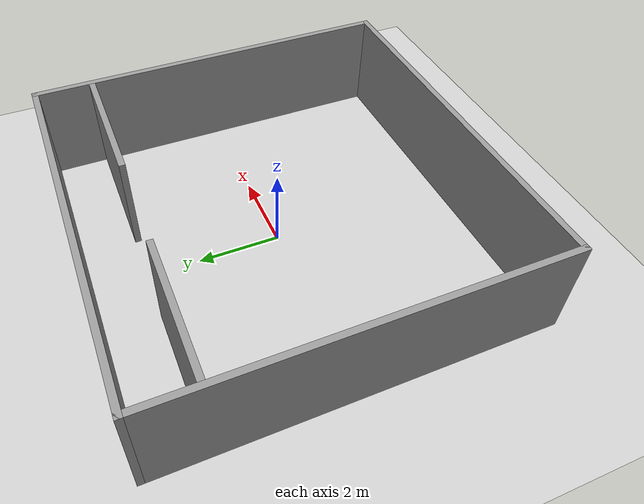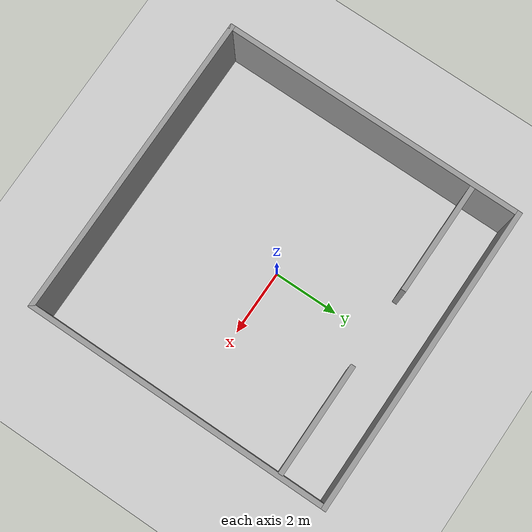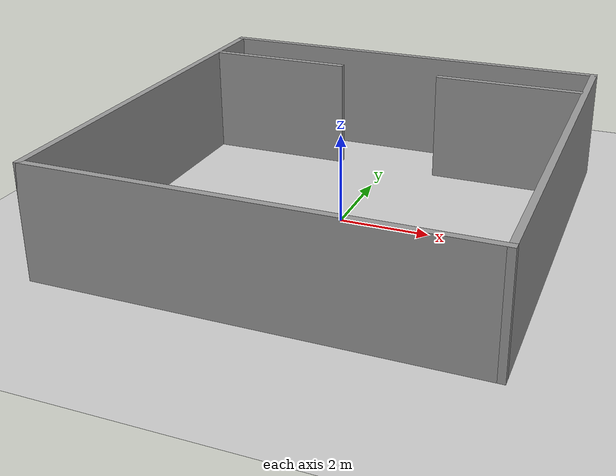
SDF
<sdf version="1.7">
 <world name="default">
  <model name="ground_plane">
   <static>1</static>
   <link name="link">
    <collision name="collision">
     <geometry><plane><normal>0 0 1</normal><size>100 100</size></plane></geometry>
     <surface>
      <contact><collide_bitmask>65535</collide_bitmask></contact>
      <friction><ode><mu>100</mu><mu2>50</mu2></ode></friction>
     </surface>
    </collision>
    <visual name="visual">
     <cast_shadows>0</cast_shadows>
     <geometry><plane><normal>0 0 1</normal><size>100 100</size></plane></geometry>
     <material>
      <script><uri>file://media/materials/scripts/gazebo.material</uri><name>Gazebo/Grey</name></script>
     </material>
    </visual>
   </link>
  </model>
  <model name="map_hourglass_u_outer">
   <link name="Wall_bottom">
    <collision name="Wall_bottom_Collision">
     <geometry><box><size>9.35 0.15 2.5</size></box></geometry>
     <pose>0 0 1.25 0 -0 0</pose>
    </collision>
    <visual name="Wall_bottom_Visual">
     <pose>0 0 1.25 0 -0 0</pose>
     <geometry><box><size>9.35 0.15 2.5</size></box></geometry>
     <material>
      <script><uri>file://media/materials/scripts/gazebo.material</uri><name>Gazebo/Grey</name></script>
      <ambient>1 1 1 1</ambient>
     </material>
    </visual>
    <pose>0.000000 -4.600000 0 0 -0 0.000000</pose>
   </link>
   <link name="Wall_top">
    <collision name="Wall_top_Collision">
     <geometry><box><size>9.35 0.15 2.5</size></box></geometry>
     <pose>0 0 1.25 0 -0 0</pose>
    </collision>
    <visual name="Wall_top_Visual">
     <pose>0 0 1.25 0 -0 0</pose>
     <geometry><box><size>9.35 0.15 2.5</size></box></geometry>
     <material>
      <script><uri>file://media/materials/scripts/gazebo.material</uri><name>Gazebo/Grey</name></script>
      <ambient>1 1 1 1</ambient>
     </material>
    </visual>
    <pose>0.000000 4.600000 0 0 -0 0.000000</pose>
   </link>
   <link name="Wall_left">
    <collision name="Wall_left_Collision">
     <geometry><box><size>9.35 0.15 2.5</size></box></geometry>
     <pose>0 0 1.25 0 -0 0</pose>
    </collision>
    <visual name="Wall_left_Visual">
     <pose>0 0 1.25 0 -0 0</pose>
     <geometry><box><size>9.35 0.15 2.5</size></box></geometry>
     <material>
      <script><uri>file://media/materials/scripts/gazebo.material</uri><name>Gazebo/Grey</name></script>
      <ambient>1 1 1 1</ambient>
     </material>
    </visual>
    <pose>-4.600000 0.000000 0 0 -0 1.570796</pose>
   </link>
   <link name="Wall_right">
    <collision name="Wall_right_Collision">
     <geometry><box><size>9.35 0.15 2.5</size></box></geometry>
     <pose>0 0 1.25 0 -0 0</pose>
    </collision>
    <visual name="Wall_right_Visual">
     <pose>0 0 1.25 0 -0 0</pose>
     <geometry><box><size>9.35 0.15 2.5</size></box></geometry>
     <material>
      <script><uri>file://media/materials/scripts/gazebo.material</uri><name>Gazebo/Grey</name></script>
      <ambient>1 1 1 1</ambient>
     </material>
    </visual>
    <pose>4.600000 0.000000 0 0 -0 1.570796</pose>
   </link>
   <static>1</static>
  </model>
  <model name="map_hourglass_u_divider">
   <link name="Divider_left">
    <collision name="Divider_left_Collision">
     <geometry><box><size>3.365 0.15 2.5</size></box></geometry>
     <pose>0 0 1.25 0 -0 0</pose>
    </collision>
    <visual name="Divider_left_Visual">
     <pose>0 0 1.25 0 -0 0</pose>
     <geometry><box><size>3.365 0.15 2.5</size></box></geometry>
     <material>
      <script><uri>file://media/materials/scripts/gazebo.material</uri><name>Gazebo/Grey</name></script>
      <ambient>1 1 1 1</ambient>
     </material>
    </visual>
    <pose>-2.862500 3.200000 0 0 -0 0.000000</pose>
   </link>
   <link name="Divider_right">
    <collision name="Divider_right_Collision">
     <geometry><box><size>3.365 0.15 2.5</size></box></geometry>
     <pose>0 0 1.25 0 -0 0</pose>
    </collision>
    <visual name="Divider_right_Visual">
     <pose>0 0 1.25 0 -0 0</pose>
     <geometry><box><size>3.365 0.15 2.5</size></box></geometry>
     <material>
      <script><uri>file://media/materials/scripts/gazebo.material</uri><name>Gazebo/Grey</name></script>
      <ambient>1 1 1 1</ambient>
     </material>
    </visual>
    <pose>2.862500 3.200000 0 0 -0 0.000000</pose>
   </link>
   <static>1</static>
  </model>
 </world>
</sdf>
